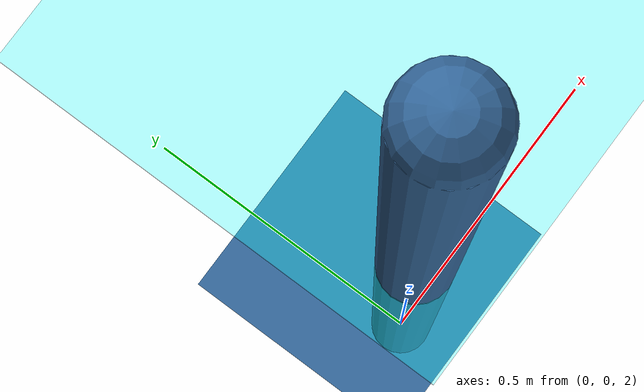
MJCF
<mujoco model="acrobot">
    <compiler angle="degree" coordinate="local"/>
    <option timestep="0.01" gravity="0 0 -9.81"/>

    <default>
        <joint damping="0.01"/>
        <geom type="capsule" size="0.02" rgba="0.2 0.4 0.6 1" mass="1"/>
    </default>

    <option timestep="0.01" integrator="RK4">
      <flag constraint="disable" energy="enable"/>
    </option>

    <worldbody>
    <light name="light" pos="0 0 6"/>
    <geom name="floor" size="3 3 .2" type="plane"/>
    <site name="target" type="sphere" pos="0 0 4" size="0.2" group="3"/>
    <camera name="fixed" pos="0 -6 2" zaxis="0 -1 0"/>
    <camera name="lookat" mode="targetbodycom" target="upper_arm" pos="0 -2 3"/>
    <body name="upper_arm" pos="0 0 2">
      <geom name="upper_arm" fromto="0 0 0 0 0 1" size="0.049" />
      <joint name="shoulder" type="hinge" axis="0 1 0" range="-180 180"/>
      <site name="wind_site" pos="0 0 0.5" size="0.01" type="sphere"/>
      <body name="lower_arm" pos="0 0 1">
        <joint name="elbow" type="hinge" axis="0 1 0" range="-180 180"/>
        <geom name="lower_arm" fromto="0 0 0 0 0 1" size="0.049" />
        <site name="tip" pos="0 0 1" size="0.01" rgba="1 0 0 1"/>
      </body>
    </body>
    <geom name="target_plane" type="box" size="3 3 0.01" pos="0 0 3" rgba="0 1 1 0.3"/>
  </worldbody>

    <actuator>
        <motor joint="elbow" ctrlrange="-1.0 1.0" />
    </actuator>
</mujoco>
